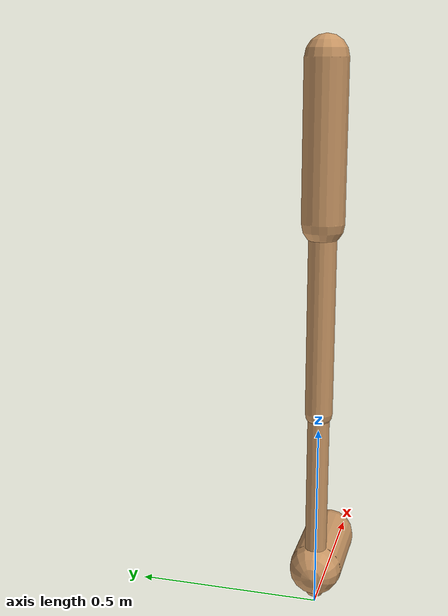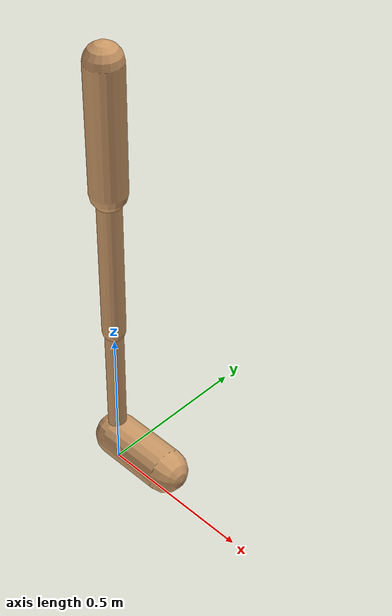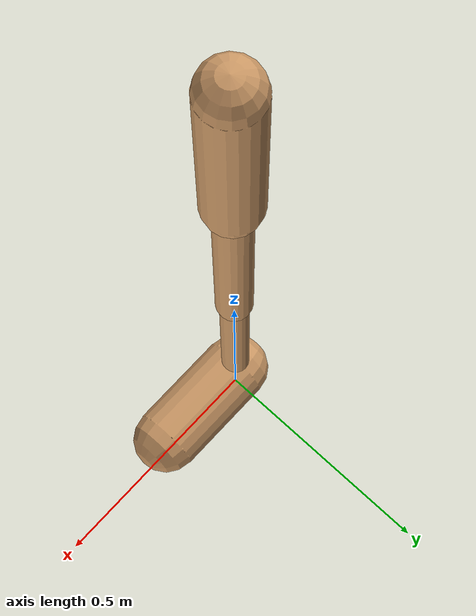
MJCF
<mujoco model="walker2d">
  <compiler angle="degree" coordinate="global" inertiafromgeom="true" />
  <default>
    <joint armature="0.01" damping=".1" limited="true" />
    <geom conaffinity="0" condim="3" contype="1" density="1000" friction="0.8 .1 .1" rgba="0.8 0.6 .4 1" />
  </default>
  <option integrator="RK4" timestep="0.002" />
  <worldbody>

    <body name="torso" pos="0 0 0.1057865437879668">
      <joint armature="0" axis="1 0 0" damping="0" limited="false" name="ignorex" pos="0 0 0" stiffness="0" type="slide" />
      <joint armature="0" axis="0 0 1" damping="0" limited="false" name="ignorez" pos="0 0 0" ref="1.25" stiffness="0" type="slide" />
      <joint armature="0" axis="0 1 0" damping="0" limited="false" name="ignorey" pos="0 0 0" stiffness="0" type="hinge" />
      <geom fromto="0 0 1.45 0 0 1.05" name="torso_geom" size="0.05545500835189685" type="capsule" />
      <body name="thigh">
        <joint axis="0 -1 0" name="thigh_joint" pos="0 0 1.05" range="-150 0" type="hinge" />
        <geom fromto="0.0 0.0 1.05 0.0 0.0 0.5498905845214894" name="thigh_geom" size="0.03643995243739553" type="capsule" />
        <body name="leg" pos="0.0 0.0 -0.050109415478510555">
          <joint axis="0 -1 0" name="leg_joint" pos="0 0 0.6" range="-150 0" type="hinge" />
          <geom fromto="0.0 0.0 0.6 0.0 0.0 0.0443228716905438" name="leg_geom" size="0.02915196194991642" type="capsule" />
          <body name="foot" pos="0.0 0.0 -0.0556771283094562">
            <joint axis="0 -1 0" name="foot_joint" pos="0 0 0.1" range="-45 45" type="hinge" />
            <geom fromto="-0.0 0.0 0.1 0.2130405755705597 0.0 0.1" name="foot_geom" size="0.07012282110127582" type="capsule" />
          </body>
        </body>
      </body>

      <body name="thigh_left">
        <joint axis="0 -1 0" name="thigh_left_joint" pos="0 0 1.05" range="-150 0" type="hinge" />
        <geom fromto="0.0 0.0 1.05 0.0 0.0 0.5498905845214894" name="thigh_left_geom" rgba=".7 .3 .6 1" size="0.03643995243739553" type="capsule" />
        <body name="leg_left" pos="0.0 0.0 -0.050109415478510555">
          <joint axis="0 -1 0" name="leg_left_joint" pos="0 0 0.6" range="-150 0" type="hinge" />
          <geom fromto="0.0 0.0 0.6 0.0 0.0 0.0443228716905438" name="leg_left_geom" rgba=".7 .3 .6 1" size="0.02915196194991642" type="capsule" />
          <body name="foot_left" pos="0.0 0.0 -0.0556771283094562">
            <joint axis="0 -1 0" name="foot_left_joint" pos="0 0 0.1" range="-45 45" type="hinge" />
            <geom fromto="-0.0 0.0 0.1 0.2130405755705597 0.0 0.1" name="foot_left_geom" rgba=".7 .3 .6 1" size="0.07012282110127582" type="capsule" />
          </body>
        </body>
      </body>
    </body>
  </worldbody>
  <actuator>

    <motor ctrllimited="true" ctrlrange="-1.0 1.0" gear="100" joint="thigh_joint" />
    <motor ctrllimited="true" ctrlrange="-1.0 1.0" gear="100" joint="leg_joint" />
    <motor ctrllimited="true" ctrlrange="-1.0 1.0" gear="100" joint="foot_joint" />
    <motor ctrllimited="true" ctrlrange="-1.0 1.0" gear="100" joint="thigh_left_joint" />
    <motor ctrllimited="true" ctrlrange="-1.0 1.0" gear="100" joint="leg_left_joint" />
    <motor ctrllimited="true" ctrlrange="-1.0 1.0" gear="100" joint="foot_left_joint" />

  </actuator>
</mujoco>
